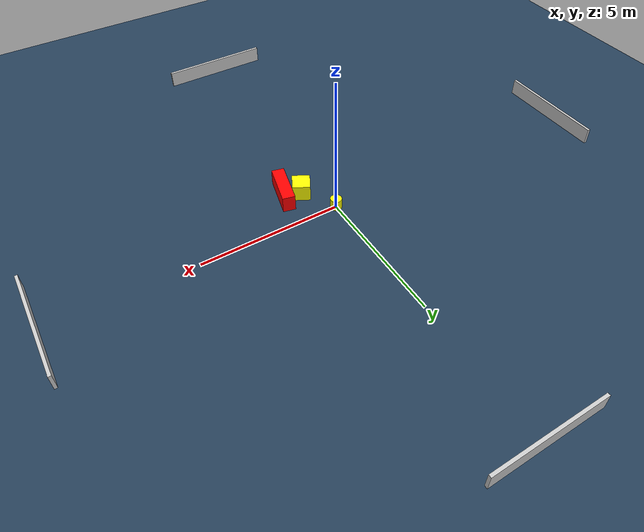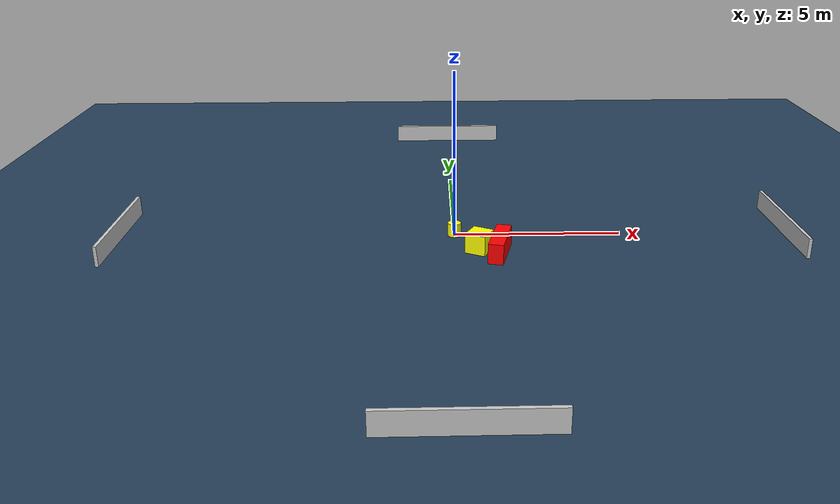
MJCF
<?xml version="1.0" ?>
<mujoco model="generated_environment">
  <option timestep="0.01" integrator="RK4" cone="elliptic"/>
  <default>
    <geom density="1"/>
  </default>
  <asset>
    <texture builtin="gradient" height="3072" name="skybox" rgb1="0.3 0.5 0.7" rgb2="0 0 0" type="skybox" width="512"/>
    <texture builtin="checker" height="300" name="groundplane" rgb1="0.2 0.3 0.4" rgb2="0.1 0.2 0.3" type="2d" width="300"/>
    <material name="groundplane" reflectance="0.2" texrepeat="5 5" texture="groundplane"/>
  </asset>
  <worldbody>
    <light dir="0 0 -1" directional="true" pos="0 0 1.5"/>
    <geom condim="3" friction="0.5 0.005 0.001" material="groundplane" name="floor" pos="0 0 0" size="0 0 0.05" type="plane"/>
    <body name="walls">
      <geom name="wall_1" condim="4" pos="-10.0 0.0 0.3" rgba="0.800000011920929 0.800000011920929 0.800000011920929 1.0" size="0.05 2.0 0.3" type="box"/>
      <geom name="wall_2" condim="4" pos="10.0 0.0 0.3" rgba="0.800000011920929 0.800000011920929 0.800000011920929 1.0" size="0.05 2.0 0.3" type="box"/>
      <geom name="wall_3" condim="4" pos="0.0 -10.0 0.3" rgba="0.800000011920929 0.800000011920929 0.800000011920929 1.0" size="2.0 0.05 0.3" type="box"/>
      <geom name="wall_4" condim="4" pos="0.0 10.0 0.3" rgba="0.800000011920929 0.800000011920929 0.800000011920929 1.0" size="2.0 0.05 0.3" type="box"/>
    </body>
    <body name="robot">
      <joint name="joint_x" type="slide" pos="0 0 0" axis="1 0 0"/>
      <joint name="joint_y" type="slide" pos="0 0 0" axis="0 1 0"/>
      <geom name="robot" type="cylinder" pos="0.0 0.0 0.2" size="0.2 0.2 0.0" mass="5.0" friction="1.0 0.005 0.0001" condim="4" rgba="1.0 1.0 0.0 1.0"/>
    </body>
    <body name="obstacle_1_movable">
      <geom name="obstacle_1_movable" condim="4" pos="0.6907865382019381 -1.1906320052586583 0.3" euler="0 0 241.78844691117794" friction="0.0 0.005 0.001" rgba="1.0 1.0 0.0 1.0" size="0.3158457354328883 0.31254048617598135 0.3" type="box" mass="0.1"/>
      <joint type="free"/>
    </body>
    <body name="obstacle_2_static">
      <geom name="obstacle_2_static" condim="4" pos="1.2664227845672416 -1.4241569928342865 0.3" euler="0 0 166.51653691205615" friction="0.0 0.005 0.001" rgba="1.0 0.0 0.0 1.0" size="0.22150885946830362 0.7591962241023373 0.3" type="box"/>
    </body>
  </worldbody>
  <actuator>
    <motor name="actuator_x" joint="joint_x" gear="1" ctrlrange="-1 1"/>
    <motor name="actuator_y" joint="joint_y" gear="1" ctrlrange="-1 1"/>
  </actuator>
</mujoco>
